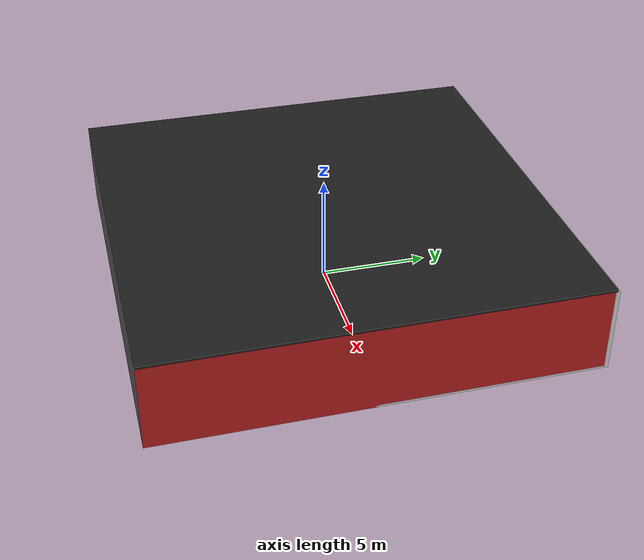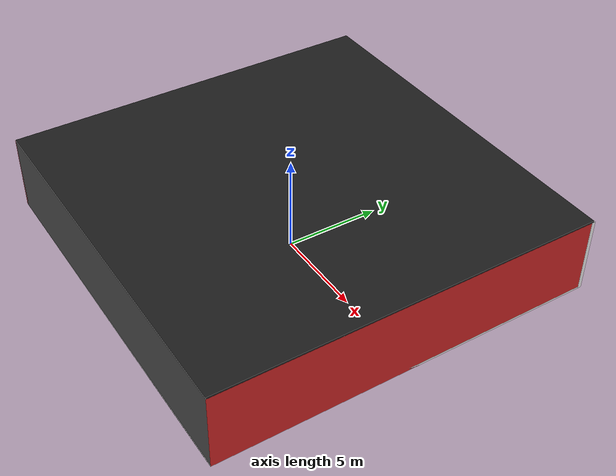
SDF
<sdf version="1.4">
 <world name="default">
  <physics type="ode">
   <max_step_size>0.001</max_step_size>
   <real_time_factor>1</real_time_factor>
   <real_time_update_rate>1000</real_time_update_rate>
   <gravity>0 0 -9.8</gravity>
  </physics>
  <scene><ambient>0.4 0.4 0.4 1</ambient><background>0.7 0.7 0.7 1</background><shadows>1</shadows></scene>
  <model name="Surrounding">
   <static>1</static>
   <link name="Ceiling">
    <collision name="Ceiling_Collision"><geometry><box><size>20 20 0.1</size></box></geometry></collision>
    <visual name="Ceiling_Visual">
     <geometry><box><size>20 20 0.1</size></box></geometry>
     <material>
      <script><uri>file://media/materials/scripts/gazebo.material</uri><name>Gazebo/Black</name></script>
     </material>
    </visual>
    <pose>0 0 4.05 0 0 0</pose>
   </link>
   <link name="Wall_South">
    <collision name="Wall_South_Collision">
     <geometry><box><size>20 0 4</size></box></geometry>
     <pose>0 0 2 0 -0 0</pose>
    </collision>
    <visual name="Wall_South_Visual">
     <pose>0 0 2 0 -0 0</pose>
     <geometry><box><size>20 0 4</size></box></geometry>
     <material>
      <script><uri>file://media/materials/scripts/gazebo.material</uri><name>Gazebo/Road</name></script>
     </material>
    </visual>
    <velocity_decay><linear>0</linear><angular>0</angular></velocity_decay>
    <pose>0 -10 0 0 -0 0</pose>
   </link>
   <link name="Wall_East">
    <collision name="Wall_21_Collision">
     <geometry><box><size>20 0 4</size></box></geometry>
     <pose>0 0 2 0 -0 0</pose>
    </collision>
    <visual name="Wall_21_Visual">
     <pose>0 0 2 0 -0 0</pose>
     <geometry><box><size>20 0 4</size></box></geometry>
     <material>
      <script><uri>file://media/materials/scripts/gazebo.material</uri><name>Gazebo/RedGlow</name></script>
     </material>
    </visual>
    <velocity_decay><linear>0</linear><angular>0</angular></velocity_decay>
    <pose>10 0 0 0 -0 1.5708</pose>
   </link>
   <link name="Wall_North">
    <collision name="Wall_22_Collision">
     <geometry><box><size>20 0.2 4</size></box></geometry>
     <pose>0 0 2 0 -0 0</pose>
    </collision>
    <visual name="Wall_22_Visual">
     <pose>0 0 2 0 -0 0</pose>
     <geometry><box><size>20 0.2 4</size></box></geometry>
     <material>
      <script><uri>file://media/materials/scripts/gazebo.material</uri><name>Gazebo/White</name></script>
     </material>
    </visual>
    <velocity_decay><linear>0</linear><angular>0</angular></velocity_decay>
    <pose>0 10 0 0 -0 0</pose>
   </link>
   <link name="Wall_West">
    <collision name="Wall_23_Collision">
     <geometry><box><size>20 0.2 4</size></box></geometry>
     <pose>0 0 2 0 -0 0</pose>
    </collision>
    <visual name="Wall_23_Visual">
     <pose>0 0 2 0 -0 0</pose>
     <geometry><box><size>20 0.2 4</size></box></geometry>
     <material>
      <script><uri>file://media/materials/scripts/gazebo.material</uri><name>Gazebo/RedTransparent</name></script>
     </material>
    </visual>
    <velocity_decay><linear>0</linear><angular>0</angular></velocity_decay>
    <pose>-10 0 0 0 0 -1.5708</pose>
   </link>
   <link name="Ground_link">
    <collision name="collision">
     <pose>0 0 .05 0 -0 0</pose>
     <geometry><box><size>20 20 0.1</size></box></geometry>
    </collision>
    <visual name="visual">
     <pose>0 0 .05 0 -0 0</pose>
     <geometry><box><size>20 20 0.1</size></box></geometry>
     <material>
      <script><uri>file://media/materials/scripts/gazebo.material</uri><name>Gazebo/WhiteGlow</name></script>
     </material>
    </visual>
   </link>
   <static>1</static>
  </model>
  <spherical_coordinates>
   <surface_model>EARTH_WGS84</surface_model>
   <latitude_deg>0</latitude_deg>
   <longitude_deg>0</longitude_deg>
   <elevation>0</elevation>
   <heading_deg>0</heading_deg>
  </spherical_coordinates>
  <light name="lightball_0" type="diffuse">
   <diffuse>0.8 0.8 0.8 1</diffuse>
   <specular>0.2 0.2 0.2 1</specular>
   <attenuation>
    <range>100</range>
    <constant>0.7</constant>
    <linear>0.01</linear>
    <quadratic>0.001</quadratic>
   </attenuation>
   <direction>-0.5 0.1 -0.9</direction>
   <pose>9.18081798713 -3.62360358154 1.83688970039 0 0 0</pose>
  </light>
  <light name="lightball_1" type="diffuse">
   <diffuse>0.8 0.8 0.8 1</diffuse>
   <specular>0.2 0.2 0.2 1</specular>
   <attenuation>
    <range>100</range>
    <constant>0.7</constant>
    <linear>0.01</linear>
    <quadratic>0.001</quadratic>
   </attenuation>
   <direction>-0.5 0.1 -0.9</direction>
   <pose>-9.34501876301 9.76760815827 0.607707022139 0 0 0</pose>
  </light>
  <light name="lightball_2" type="diffuse">
   <diffuse>0.8 0.8 0.8 1</diffuse>
   <specular>0.2 0.2 0.2 1</specular>
   <attenuation>
    <range>100</range>
    <constant>0.7</constant>
    <linear>0.01</linear>
    <quadratic>0.001</quadratic>
   </attenuation>
   <direction>-0.5 0.1 -0.9</direction>
   <pose>2.39554309701 -9.30765969735 1.03888653687 0 0 0</pose>
  </light>
  <light name="lightball_3" type="diffuse">
   <diffuse>0.8 0.8 0.8 1</diffuse>
   <specular>0.2 0.2 0.2 1</specular>
   <attenuation>
    <range>100</range>
    <constant>0.7</constant>
    <linear>0.01</linear>
    <quadratic>0.001</quadratic>
   </attenuation>
   <direction>-0.5 0.1 -0.9</direction>
   <pose>-8.88066947348 -1.62305905848 1.507257989 0 0 0</pose>
  </light>
  <light name="lightball_4" type="diffuse">
   <diffuse>0.8 0.8 0.8 1</diffuse>
   <specular>0.2 0.2 0.2 1</specular>
   <attenuation>
    <range>100</range>
    <constant>0.7</constant>
    <linear>0.01</linear>
    <quadratic>0.001</quadratic>
   </attenuation>
   <direction>-0.5 0.1 -0.9</direction>
   <pose>3.50895866153 4.55819832403 2.99592422834 0 0 0</pose>
  </light>
  <light name="lightball_5" type="diffuse">
   <diffuse>0.8 0.8 0.8 1</diffuse>
   <specular>0.2 0.2 0.2 1</specular>
   <attenuation>
    <range>100</range>
    <constant>0.7</constant>
    <linear>0.01</linear>
    <quadratic>0.001</quadratic>
   </attenuation>
   <direction>-0.5 0.1 -0.9</direction>
   <pose>-8.02675638784 2.44378452763 1.11160039721 0 0 0</pose>
  </light>
  <light name="lightball_6" type="diffuse">
   <diffuse>0.8 0.8 0.8 1</diffuse>
   <specular>0.2 0.2 0.2 1</specular>
   <attenuation>
    <range>100</range>
    <constant>0.7</constant>
    <linear>0.01</linear>
    <quadratic>0.001</quadratic>
   </attenuation>
   <direction>-0.5 0.1 -0.9</direction>
   <pose>0.435286484401 -2.92948698234 1.87361728476 0 0 0</pose>
  </light>
  <light name="lightball_7" type="diffuse">
   <diffuse>0.8 0.8 0.8 1</diffuse>
   <specular>0.2 0.2 0.2 1</specular>
   <attenuation>
    <range>100</range>
    <constant>0.7</constant>
    <linear>0.01</linear>
    <quadratic>0.001</quadratic>
   </attenuation>
   <direction>-0.5 0.1 -0.9</direction>
   <pose>3.55559035108 5.20675090957 2.0291170114 0 0 0</pose>
  </light>
  <light name="lightball_8" type="diffuse">
   <diffuse>0.8 0.8 0.8 1</diffuse>
   <specular>0.2 0.2 0.2 1</specular>
   <attenuation>
    <range>100</range>
    <constant>0.7</constant>
    <linear>0.01</linear>
    <quadratic>0.001</quadratic>
   </attenuation>
   <direction>-0.5 0.1 -0.9</direction>
   <pose>3.17327670491 3.31873333194 1.2716870534 0 0 0</pose>
  </light>
  <light name="lightball_9" type="diffuse">
   <diffuse>0.8 0.8 0.8 1</diffuse>
   <specular>0.2 0.2 0.2 1</specular>
   <attenuation>
    <range>100</range>
    <constant>0.7</constant>
    <linear>0.01</linear>
    <quadratic>0.001</quadratic>
   </attenuation>
   <direction>-0.5 0.1 -0.9</direction>
   <pose>5.0979144728 5.25565000612 2.02868316968 0 0 0</pose>
  </light>
  <light name="lightball_10" type="diffuse">
   <diffuse>0.8 0.8 0.8 1</diffuse>
   <specular>0.2 0.2 0.2 1</specular>
   <attenuation>
    <range>100</range>
    <constant>0.7</constant>
    <linear>0.01</linear>
    <quadratic>0.001</quadratic>
   </attenuation>
   <direction>-0.5 0.1 -0.9</direction>
   <pose>-9.13731799626 8.25562535643 0.70604288788 0 0 0</pose>
  </light>
  <light name="lightball_11" type="diffuse">
   <diffuse>0.8 0.8 0.8 1</diffuse>
   <specular>0.2 0.2 0.2 1</specular>
   <attenuation>
    <range>100</range>
    <constant>0.7</constant>
    <linear>0.01</linear>
    <quadratic>0.001</quadratic>
   </attenuation>
   <direction>-0.5 0.1 -0.9</direction>
   <pose>-2.0712967336 0.744126585407 1.84720631311 0 0 0</pose>
  </light>
  <light name="lightball_12" type="diffuse">
   <diffuse>0.8 0.8 0.8 1</diffuse>
   <specular>0.2 0.2 0.2 1</specular>
   <attenuation>
    <range>100</range>
    <constant>0.7</constant>
    <linear>0.01</linear>
    <quadratic>0.001</quadratic>
   </attenuation>
   <direction>-0.5 0.1 -0.9</direction>
   <pose>1.50058241339 -6.51200119695 2.66156328946 0 0 0</pose>
  </light>
  <light name="lightball_13" type="diffuse">
   <diffuse>0.8 0.8 0.8 1</diffuse>
   <specular>0.2 0.2 0.2 1</specular>
   <attenuation>
    <range>100</range>
    <constant>0.7</constant>
    <linear>0.01</linear>
    <quadratic>0.001</quadratic>
   </attenuation>
   <direction>-0.5 0.1 -0.9</direction>
   <pose>-8.7093254247 5.86840760779 1.07781031045 0 0 0</pose>
  </light>
  <include>
   <uri>model://textured_shapes</uri>
   <pose>-3.47393258527 -2.68621594516 0 0 0 2.90016010513</pose>
  </include>
  <include>
   <uri>model://textured_shapes</uri>
   <pose>-1.98106398352 4.46811031117 0 0 0 0.106118862066</pose>
  </include>
  <include><uri>model://table</uri><pose>0.56373038144 5.36545400463 0 0 0 2.18965198772</pose></include>
  <include><uri>model://cabinet</uri><pose>4.38031961033 6.48942931671 0 0 0 2.45461038455</pose></include>
  <include>
   <uri>model://construction_cone</uri>
   <pose>7.72757064873 -8.48278208461 0 0 0 1.12177944753</pose>
  </include>
  <include><uri>model://cabinet</uri><pose>6.71445128305 -4.83173499636 0 0 0 2.604020169</pose></include>
 </world>
</sdf>

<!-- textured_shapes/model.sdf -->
<sdf version="1.6">
  <model name="textured_shapes">
    <pose>0 0 0.5 0 0 0</pose>
    <link name="box">
      <pose>0 -1.5 0 0 0 0</pose>
      <collision name="collision">
        <geometry>
          <box>
            <size>1 1 1</size>
          </box>
        </geometry>
      </collision>
      <visual name="visual">
        <geometry>
          <box>
            <size>1 1 1</size>
          </box>
        </geometry>
        <material>
          <script>
            <uri>model://../model_source/models/textured_shapes/materials/scripts</uri>
            <uri>model://../model_source/models/textured_shapes/materials/textures</uri>
            <name>TexturedShape/Squares</name>
          </script>
        </material>
      </visual>
    </link>
    <link name="sphere">
      <collision name="collision">
        <geometry>
          <sphere>
            <radius>0.5</radius>
          </sphere>
        </geometry>
      </collision>
      <visual name="visual">
        <geometry>
          <sphere>
            <radius>0.5</radius>
          </sphere>
        </geometry>
        <material>
          <script>
            <uri>model://../model_source/models/textured_shapes/materials/scripts</uri>
            <uri>model://../model_source/models/textured_shapes/materials/textures</uri>
            <name>TexturedShape/Squares</name>
          </script>
        </material>
      </visual>
    </link>
    <link name="cylinder">
      <pose>0 1.5 0 0 0 0</pose>
      <collision name="collision">
        <geometry>
          <cylinder>
            <radius>0.5</radius>
            <length>1</length>
          </cylinder>
        </geometry>
      </collision>
      <visual name="visual">
        <geometry>
          <cylinder>
            <radius>0.5</radius>
            <length>1</length>
          </cylinder>
        </geometry>
        <material>
          <script>
            <uri>model://../model_source/models/textured_shapes/materials/scripts</uri>
            <uri>model://../model_source/models/textured_shapes/materials/textures</uri>
            <name>TexturedShape/Squares</name>
          </script>
        </material>
      </visual>
    </link>
  </model>
</sdf>

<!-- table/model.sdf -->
<sdf version="1.5">
  <model name="table">
    <static>true</static>
    <link name="link">
      <collision name="surface">
        <pose>0 0 1.0 0 0 0</pose>
        <geometry>
          <box>
            <size>1.5 0.8 0.03</size>
          </box>
        </geometry>
        <surface>
          <friction>
            <ode>
              <mu>0.6</mu>
              <mu2>0.6</mu2>
            </ode>
          </friction>
        </surface>
      </collision>
      <visual name="visual1">
        <pose>0 0 1.0 0 0 0</pose>
        <geometry>
          <box>
            <size>1.5 0.8 0.03</size>
          </box>
        </geometry>
        <material>
          <script>
            <uri>model://media/materials/scripts/gazebo.material</uri>
            <name>Gazebo/Wood</name>
          </script>
        </material>
      </visual>
      <collision name="front_left_leg">
        <pose>0.68 0.38 0.5 0 0 0</pose>
        <geometry>
          <cylinder>
            <radius>0.02</radius>
            <length>1.0</length>
          </cylinder>
        </geometry>
      </collision>
      <visual name="front_left_leg">
        <pose>0.68 0.38 0.5 0 0 0</pose>
        <geometry>
          <cylinder>
            <radius>0.02</radius>
            <length>1.0</length>
          </cylinder>
        </geometry>
        <material>
          <script>
            <uri>model://media/materials/scripts/gazebo.material</uri>
            <name>Gazebo/Grey</name>
          </script>
        </material>
      </visual>
      <collision name="front_right_leg">
        <pose>0.68 -0.38 0.5 0 0 0</pose>
        <geometry>
          <cylinder>
            <radius>0.02</radius>
            <length>1.0</length>
          </cylinder>
        </geometry>
      </collision>
      <visual name="front_right_leg">
        <pose>0.68 -0.38 0.5 0 0 0</pose>
        <geometry>
          <cylinder>
            <radius>0.02</radius>
            <length>1.0</length>
          </cylinder>
        </geometry>
        <material>
          <script>
            <uri>model://media/materials/scripts/gazebo.material</uri>
            <name>Gazebo/Grey</name>
          </script>
        </material>
      </visual>
      <collision name="back_right_leg">
        <pose>-0.68 -0.38 0.5 0 0 0</pose>
        <geometry>
          <cylinder>
            <radius>0.02</radius>
            <length>1.0</length>
          </cylinder>
        </geometry>
      </collision>
      <visual name="back_right_leg">
        <pose>-0.68 -0.38 0.5 0 0 0</pose>
        <geometry>
          <cylinder>
            <radius>0.02</radius>
            <length>1.0</length>
          </cylinder>
        </geometry>
        <material>
          <script>
            <uri>model://media/materials/scripts/gazebo.material</uri>
            <name>Gazebo/Grey</name>
          </script>
        </material>
      </visual>
      <collision name="back_left_leg">
        <pose>-0.68 0.38 0.5 0 0 0</pose>
        <geometry>
          <cylinder>
            <radius>0.02</radius>
            <length>1.0</length>
          </cylinder>
        </geometry>
      </collision>
      <visual name="back_left_leg">
        <pose>-0.68 0.38 0.5 0 0 0</pose>
        <geometry>
          <cylinder>
            <radius>0.02</radius>
            <length>1.0</length>
          </cylinder>
        </geometry>
        <material>
          <script>
            <uri>model://media/materials/scripts/gazebo.material</uri>
            <name>Gazebo/Grey</name>
          </script>
        </material>
      </visual>
    </link>
  </model>
</sdf>

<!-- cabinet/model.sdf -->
<sdf version="1.5">
  <model name="cabinet">
    <static>true</static>
    <link name="cabinet_bottom_plate">
      <inertial>
        <pose>0 0 -1 0 0 0</pose>
        <inertia>
          <ixx>2.050000</ixx>
          <ixy>0</ixy>
          <ixz>0</ixz>
          <iyy>2.050000</iyy>
          <iyz>0</iyz>
          <izz>2.050000</izz>
        </inertia>
        <mass>25.000000</mass>
      </inertial>
      <collision name="cabinet_bottom_plate_geom">
        <pose>0 0 0.010000 0 0 0</pose>
        <geometry>
          <box>
            <size>0.450000 0.450000 0.020000</size>
          </box>
        </geometry>
      </collision>
      <visual name="cabinet_bottom_plate_geom_visual">
        <pose>0 0 0.010000 0 0 0</pose>
        <geometry>
          <box>
            <size>0.450000 0.450000 0.020000</size>
          </box>
        </geometry>
        <material>
          <script>
            <uri>model://media/materials/scripts/gazebo.material</uri>
            <name>Gazebo/Wood</name>
          </script>
        </material>
      </visual>
      <collision name="cabinet_bottom_plate_geom_cabinet_back_plate">
        <pose>0.235000 0 0.510000 0 0 0</pose>
        <geometry>
          <box>
            <size>0.020000 0.450000 1.020000</size>
          </box>
        </geometry>
      </collision>
      <visual name="cabinet_bottom_plate_geom_cabinet_back_plate_visual">
        <pose>0.235000 0 0.510000 0 0 0</pose>
        <geometry>
          <box>
            <size>0.020000 0.450000 1.020000</size>
          </box>
        </geometry>
        <material>
          <script>
            <uri>model://media/materials/scripts/gazebo.material</uri>
            <name>Gazebo/Wood</name>
          </script>
        </material>
      </visual>
      <collision name="cabinet_bottom_plate_geom_cabinet_left_plate">
        <pose>0 0.235000 0.510000 0 0 0</pose>
        <geometry>
          <box>
            <size>0.450000 0.020000 1.020000</size>
          </box>
        </geometry>
      </collision>
      <visual name="cabinet_bottom_plate_geom_cabinet_left_plate_visual">
        <pose>0 0.235000 0.510000 0 0 0</pose>
        <geometry>
          <box>
            <size>0.450000 0.020000 1.020000</size>
          </box>
        </geometry>
        <material>
          <script>
            <uri>model://media/materials/scripts/gazebo.material</uri>
            <name>Gazebo/Wood</name>
          </script>
        </material>
      </visual>
      <collision name="cabinet_bottom_plate_geom_cabinet_middle_plate">
        <pose>0 0 0.510000 0 0 0</pose>
        <geometry>
          <box>
            <size>0.450000 0.450000 0.020000</size>
          </box>
        </geometry>
      </collision>
      <visual name="cabinet_bottom_plate_geom_cabinet_middle_plate_visual">
        <pose>0 0 0.510000 0 0 0</pose>
        <geometry>
          <box>
            <size>0.450000 0.450000 0.020000</size>
          </box>
        </geometry>
        <material>
          <script>
            <uri>model://media/materials/scripts/gazebo.material</uri>
            <name>Gazebo/Wood</name>
          </script>
        </material>
      </visual>
      <collision name="cabinet_bottom_plate_geom_cabinet_right_plate">
        <pose>0 -0.235000 0.510000 0 0 0</pose>
        <geometry>
          <box>
            <size>0.450000 0.020000 1.020000</size>
          </box>
        </geometry>
      </collision>
      <visual name="cabinet_bottom_plate_geom_cabinet_right_plate_visual">
        <pose>0 -0.235000 0.510000 0 0 0</pose>
        <geometry>
          <box>
            <size>0.450000 0.020000 1.020000</size>
          </box>
        </geometry>
        <material>
          <script>
            <uri>model://media/materials/scripts/gazebo.material</uri>
            <name>Gazebo/Wood</name>
          </script>
        </material>
      </visual>
      <collision name="cabinet_bottom_plate_geom_cabinet_top_plate">
        <pose>0 0 1.010000 0 0 0</pose>
        <geometry>
          <box>
            <size>0.450000 0.450000 0.020000</size>
          </box>
        </geometry>
      </collision>
      <visual name="cabinet_bottom_plate_geom_cabinet_top_plate_visual">
        <pose>0 0 1.010000 0 0 0</pose>
        <geometry>
          <box>
            <size>0.450000 0.450000 0.020000</size>
          </box>
        </geometry>
        <material>
          <script>
            <uri>model://media/materials/scripts/gazebo.material</uri>
            <name>Gazebo/Wood</name>
          </script>
        </material>
      </visual>
    </link>
  </model>
</sdf>

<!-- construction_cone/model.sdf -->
<sdf version="1.5">
  <model name="Construction Cone">
    <link name="link">
      <collision name="collision">
        <geometry>
          <mesh>
            <scale>10 10 10</scale>
            <uri>file://isr-testbed/construction_cone/meshes/construction_cone.dae</uri>
          </mesh>
        </geometry>
      </collision>
      <visual name="visual">
        <geometry>
          <mesh>
            <scale>10 10 10</scale>
            <uri>file://isr-testbed/construction_cone/meshes/construction_cone.dae</uri>
          </mesh>
        </geometry>
      </visual>
    </link>
  </model>
</sdf>
